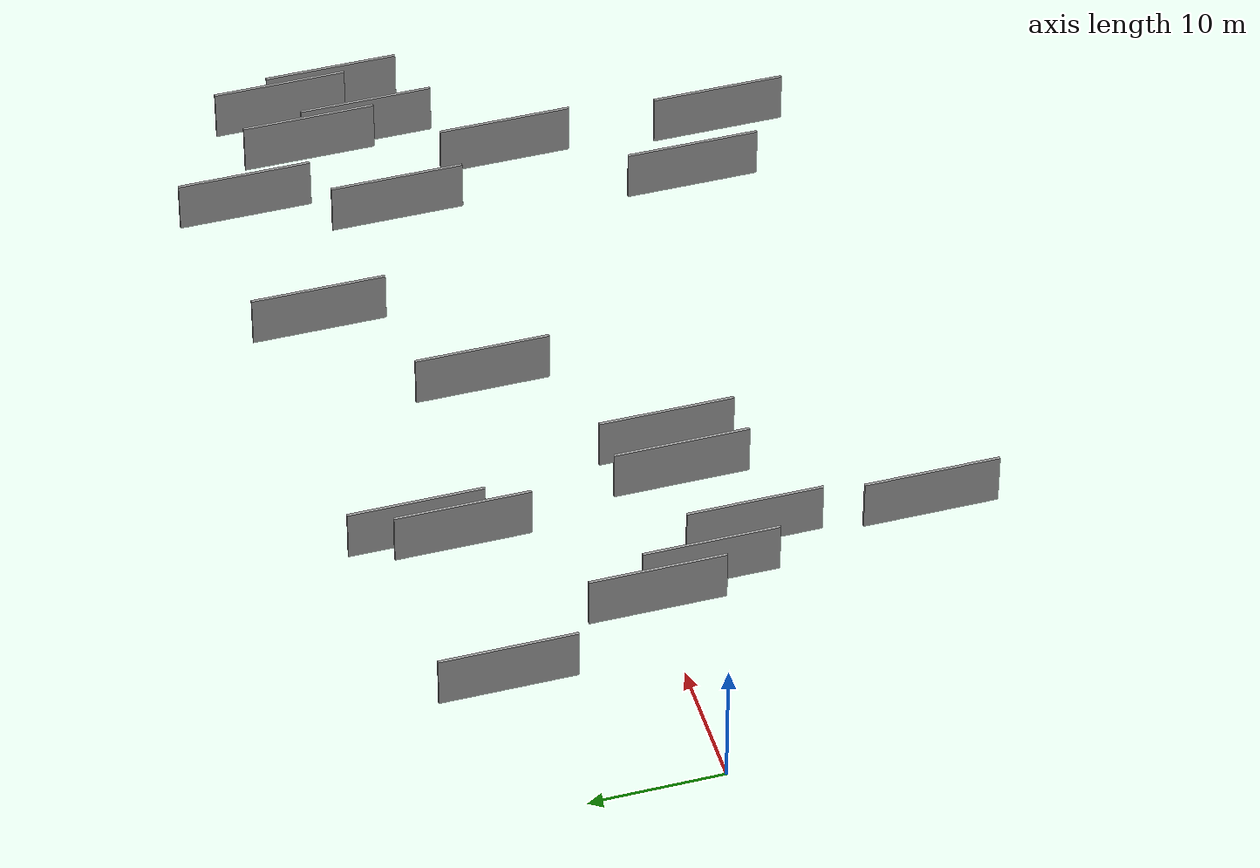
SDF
<sdf version="1.6">
 <world name="default">
  <scene>
   <sky><clouds><speed>12</speed></clouds></sky>
   <ambient>0.4 0.4 0.4 1</ambient>
   <background>0.7 0.7 0.7 1</background>
   <shadows>1</shadows>
  </scene>
  <gravity>0 0 -9.8066</gravity>
  <magnetic_field>6e-06 2.3e-05 -4.2e-05</magnetic_field>
  <physics default="0" name="default_physics" type="ode">
   <ode>
    <solver>
     <type>quick</type>
     <iters>10</iters>
     <sor>1.0</sor>
     <use_dynamic_moi_rescaling>0</use_dynamic_moi_rescaling>
    </solver>
    <constraints>
     <cfm>0</cfm>
     <erp>0.2</erp>
     <contact_max_correcting_vel>100</contact_max_correcting_vel>
     <contact_surface_layer>0.001</contact_surface_layer>
    </constraints>
   </ode>
   <max_step_size>0.004</max_step_size>
   <real_time_factor>1</real_time_factor>
   <real_time_update_rate>250</real_time_update_rate>
  </physics>
  <light name="sun" type="directional">
   <pose>0 0 10 0 0 0</pose>
   <diffuse>0.8 0.8 0.8 1</diffuse>
   <specular>0.2 0.2 0.2 1</specular>
   <attenuation>
    <range>1000</range>
    <constant>0.9</constant>
    <linear>0.01</linear>
    <quadratic>0.001</quadratic>
   </attenuation>
   <direction>-0.5 0.1 -0.9</direction>
  </light>
  <model name="grey_wall_1">
   <static>1</static>
   <pose>15.8258 -19.7976 5.0 0.000000 0.000000 1.570796</pose>
   <link name="link">
    <pose>0 0 2.00 0 0 0</pose>
    <collision name="collision"><geometry><box><size>10.00 0.2 4.00</size></box></geometry></collision>
    <visual name="visual">
     <cast_shadows>0</cast_shadows>
     <geometry><box><size>10.00 0.2 4.00</size></box></geometry>
     <material>
      <script>
       <uri>model://grey_wall/materials/scripts</uri>
       <uri>model://grey_wall/materials/textures</uri>
       <name>vrc/grey_wall</name>
      </script>
     </material>
    </visual>
   </link>
  </model>
  <model name="grey_wall_2">
   <static>1</static>
   <pose>11.9177 1.4684 5.0 0.000000 0.000000 1.570796</pose>
   <link name="link">
    <pose>0 0 2.00 0 0 0</pose>
    <collision name="collision"><geometry><box><size>10.00 0.2 4.00</size></box></geometry></collision>
    <visual name="visual">
     <cast_shadows>0</cast_shadows>
     <geometry><box><size>10.00 0.2 4.00</size></box></geometry>
     <material>
      <script>
       <uri>model://grey_wall/materials/scripts</uri>
       <uri>model://grey_wall/materials/textures</uri>
       <name>vrc/grey_wall</name>
      </script>
     </material>
    </visual>
   </link>
  </model>
  <model name="grey_wall_3">
   <static>1</static>
   <pose>13.5202 -2.8960 5.0 0.000000 0.000000 1.570796</pose>
   <link name="link">
    <pose>0 0 2.00 0 0 0</pose>
    <collision name="collision"><geometry><box><size>10.00 0.2 4.00</size></box></geometry></collision>
    <visual name="visual">
     <cast_shadows>0</cast_shadows>
     <geometry><box><size>10.00 0.2 4.00</size></box></geometry>
     <material>
      <script>
       <uri>model://grey_wall/materials/scripts</uri>
       <uri>model://grey_wall/materials/textures</uri>
       <name>vrc/grey_wall</name>
      </script>
     </material>
    </visual>
   </link>
  </model>
  <model name="grey_wall_4">
   <static>1</static>
   <pose>64.7459 13.0781 5.0 0.000000 0.000000 1.570796</pose>
   <link name="link">
    <pose>0 0 2.00 0 0 0</pose>
    <collision name="collision"><geometry><box><size>10.00 0.2 4.00</size></box></geometry></collision>
    <visual name="visual">
     <cast_shadows>0</cast_shadows>
     <geometry><box><size>10.00 0.2 4.00</size></box></geometry>
     <material>
      <script>
       <uri>model://grey_wall/materials/scripts</uri>
       <uri>model://grey_wall/materials/textures</uri>
       <name>vrc/grey_wall</name>
      </script>
     </material>
    </visual>
   </link>
  </model>
  <model name="grey_wall_5">
   <static>1</static>
   <pose>69.0698 14.2460 5.0 0.000000 0.000000 1.570796</pose>
   <link name="link">
    <pose>0 0 2.00 0 0 0</pose>
    <collision name="collision"><geometry><box><size>10.00 0.2 4.00</size></box></geometry></collision>
    <visual name="visual">
     <cast_shadows>0</cast_shadows>
     <geometry><box><size>10.00 0.2 4.00</size></box></geometry>
     <material>
      <script>
       <uri>model://grey_wall/materials/scripts</uri>
       <uri>model://grey_wall/materials/textures</uri>
       <name>vrc/grey_wall</name>
      </script>
     </material>
    </visual>
   </link>
  </model>
  <model name="grey_wall_6">
   <static>1</static>
   <pose>16.4750 -6.9574 5.0 0.000000 0.000000 1.570796</pose>
   <link name="link">
    <pose>0 0 2.00 0 0 0</pose>
    <collision name="collision"><geometry><box><size>10.00 0.2 4.00</size></box></geometry></collision>
    <visual name="visual">
     <cast_shadows>0</cast_shadows>
     <geometry><box><size>10.00 0.2 4.00</size></box></geometry>
     <material>
      <script>
       <uri>model://grey_wall/materials/scripts</uri>
       <uri>model://grey_wall/materials/textures</uri>
       <name>vrc/grey_wall</name>
      </script>
     </material>
    </visual>
   </link>
  </model>
  <model name="grey_wall_7">
   <static>1</static>
   <pose>59.4809 -17.3056 5.0 0.000000 0.000000 1.570796</pose>
   <link name="link">
    <pose>0 0 2.00 0 0 0</pose>
    <collision name="collision"><geometry><box><size>10.00 0.2 4.00</size></box></geometry></collision>
    <visual name="visual">
     <cast_shadows>0</cast_shadows>
     <geometry><box><size>10.00 0.2 4.00</size></box></geometry>
     <material>
      <script>
       <uri>model://grey_wall/materials/scripts</uri>
       <uri>model://grey_wall/materials/textures</uri>
       <name>vrc/grey_wall</name>
      </script>
     </material>
    </visual>
   </link>
  </model>
  <model name="grey_wall_8">
   <static>1</static>
   <pose>56.4049 8.4495 5.0 0.000000 0.000000 1.570796</pose>
   <link name="link">
    <pose>0 0 2.00 0 0 0</pose>
    <collision name="collision"><geometry><box><size>10.00 0.2 4.00</size></box></geometry></collision>
    <visual name="visual">
     <cast_shadows>0</cast_shadows>
     <geometry><box><size>10.00 0.2 4.00</size></box></geometry>
     <material>
      <script>
       <uri>model://grey_wall/materials/scripts</uri>
       <uri>model://grey_wall/materials/textures</uri>
       <name>vrc/grey_wall</name>
      </script>
     </material>
    </visual>
   </link>
  </model>
  <model name="grey_wall_9">
   <static>1</static>
   <pose>26.9093 -3.6095 5.0 0.000000 0.000000 1.570796</pose>
   <link name="link">
    <pose>0 0 2.00 0 0 0</pose>
    <collision name="collision"><geometry><box><size>10.00 0.2 4.00</size></box></geometry></collision>
    <visual name="visual">
     <cast_shadows>0</cast_shadows>
     <geometry><box><size>10.00 0.2 4.00</size></box></geometry>
     <material>
      <script>
       <uri>model://grey_wall/materials/scripts</uri>
       <uri>model://grey_wall/materials/textures</uri>
       <name>vrc/grey_wall</name>
      </script>
     </material>
    </visual>
   </link>
  </model>
  <model name="grey_wall_10">
   <static>1</static>
   <pose>7.4243 13.4742 5.0 0.000000 0.000000 1.570796</pose>
   <link name="link">
    <pose>0 0 2.00 0 0 0</pose>
    <collision name="collision"><geometry><box><size>10.00 0.2 4.00</size></box></geometry></collision>
    <visual name="visual">
     <cast_shadows>0</cast_shadows>
     <geometry><box><size>10.00 0.2 4.00</size></box></geometry>
     <material>
      <script>
       <uri>model://grey_wall/materials/scripts</uri>
       <uri>model://grey_wall/materials/textures</uri>
       <name>vrc/grey_wall</name>
      </script>
     </material>
    </visual>
   </link>
  </model>
  <model name="grey_wall_11">
   <static>1</static>
   <pose>22.8987 15.8759 5.0 0.000000 0.000000 1.570796</pose>
   <link name="link">
    <pose>0 0 2.00 0 0 0</pose>
    <collision name="collision"><geometry><box><size>10.00 0.2 4.00</size></box></geometry></collision>
    <visual name="visual">
     <cast_shadows>0</cast_shadows>
     <geometry><box><size>10.00 0.2 4.00</size></box></geometry>
     <material>
      <script>
       <uri>model://grey_wall/materials/scripts</uri>
       <uri>model://grey_wall/materials/textures</uri>
       <name>vrc/grey_wall</name>
      </script>
     </material>
    </visual>
   </link>
  </model>
  <model name="grey_wall_12">
   <static>1</static>
   <pose>23.5354 -3.7378 5.0 0.000000 0.000000 1.570796</pose>
   <link name="link">
    <pose>0 0 2.00 0 0 0</pose>
    <collision name="collision"><geometry><box><size>10.00 0.2 4.00</size></box></geometry></collision>
    <visual name="visual">
     <cast_shadows>0</cast_shadows>
     <geometry><box><size>10.00 0.2 4.00</size></box></geometry>
     <material>
      <script>
       <uri>model://grey_wall/materials/scripts</uri>
       <uri>model://grey_wall/materials/textures</uri>
       <name>vrc/grey_wall</name>
      </script>
     </material>
    </visual>
   </link>
  </model>
  <model name="grey_wall_13">
   <static>1</static>
   <pose>60.4025 -0.9328 5.0 0.000000 0.000000 1.570796</pose>
   <link name="link">
    <pose>0 0 2.00 0 0 0</pose>
    <collision name="collision"><geometry><box><size>10.00 0.2 4.00</size></box></geometry></collision>
    <visual name="visual">
     <cast_shadows>0</cast_shadows>
     <geometry><box><size>10.00 0.2 4.00</size></box></geometry>
     <material>
      <script>
       <uri>model://grey_wall/materials/scripts</uri>
       <uri>model://grey_wall/materials/textures</uri>
       <name>vrc/grey_wall</name>
      </script>
     </material>
    </visual>
   </link>
  </model>
  <model name="grey_wall_14">
   <static>1</static>
   <pose>36.7609 7.2722 5.0 0.000000 0.000000 1.570796</pose>
   <link name="link">
    <pose>0 0 2.00 0 0 0</pose>
    <collision name="collision"><geometry><box><size>10.00 0.2 4.00</size></box></geometry></collision>
    <visual name="visual">
     <cast_shadows>0</cast_shadows>
     <geometry><box><size>10.00 0.2 4.00</size></box></geometry>
     <material>
      <script>
       <uri>model://grey_wall/materials/scripts</uri>
       <uri>model://grey_wall/materials/textures</uri>
       <name>vrc/grey_wall</name>
      </script>
     </material>
    </visual>
   </link>
  </model>
  <model name="grey_wall_15">
   <static>1</static>
   <pose>21.6800 12.8251 5.0 0.000000 0.000000 1.570796</pose>
   <link name="link">
    <pose>0 0 2.00 0 0 0</pose>
    <collision name="collision"><geometry><box><size>10.00 0.2 4.00</size></box></geometry></collision>
    <visual name="visual">
     <cast_shadows>0</cast_shadows>
     <geometry><box><size>10.00 0.2 4.00</size></box></geometry>
     <material>
      <script>
       <uri>model://grey_wall/materials/scripts</uri>
       <uri>model://grey_wall/materials/textures</uri>
       <name>vrc/grey_wall</name>
      </script>
     </material>
    </visual>
   </link>
  </model>
  <model name="grey_wall_16">
   <static>1</static>
   <pose>69.8592 10.0712 5.0 0.000000 0.000000 1.570796</pose>
   <link name="link">
    <pose>0 0 2.00 0 0 0</pose>
    <collision name="collision"><geometry><box><size>10.00 0.2 4.00</size></box></geometry></collision>
    <visual name="visual">
     <cast_shadows>0</cast_shadows>
     <geometry><box><size>10.00 0.2 4.00</size></box></geometry>
     <material>
      <script>
       <uri>model://grey_wall/materials/scripts</uri>
       <uri>model://grey_wall/materials/textures</uri>
       <name>vrc/grey_wall</name>
      </script>
     </material>
    </visual>
   </link>
  </model>
  <model name="grey_wall_17">
   <static>1</static>
   <pose>65.4870 8.4819 5.0 0.000000 0.000000 1.570796</pose>
   <link name="link">
    <pose>0 0 2.00 0 0 0</pose>
    <collision name="collision"><geometry><box><size>10.00 0.2 4.00</size></box></geometry></collision>
    <visual name="visual">
     <cast_shadows>0</cast_shadows>
     <geometry><box><size>10.00 0.2 4.00</size></box></geometry>
     <material>
      <script>
       <uri>model://grey_wall/materials/scripts</uri>
       <uri>model://grey_wall/materials/textures</uri>
       <name>vrc/grey_wall</name>
      </script>
     </material>
    </visual>
   </link>
  </model>
  <model name="grey_wall_18">
   <static>1</static>
   <pose>46.1425 17.0389 5.0 0.000000 0.000000 1.570796</pose>
   <link name="link">
    <pose>0 0 2.00 0 0 0</pose>
    <collision name="collision"><geometry><box><size>10.00 0.2 4.00</size></box></geometry></collision>
    <visual name="visual">
     <cast_shadows>0</cast_shadows>
     <geometry><box><size>10.00 0.2 4.00</size></box></geometry>
     <material>
      <script>
       <uri>model://grey_wall/materials/scripts</uri>
       <uri>model://grey_wall/materials/textures</uri>
       <name>vrc/grey_wall</name>
      </script>
     </material>
    </visual>
   </link>
  </model>
  <model name="grey_wall_19">
   <static>1</static>
   <pose>53.9657 -13.6798 5.0 0.000000 0.000000 1.570796</pose>
   <link name="link">
    <pose>0 0 2.00 0 0 0</pose>
    <collision name="collision"><geometry><box><size>10.00 0.2 4.00</size></box></geometry></collision>
    <visual name="visual">
     <cast_shadows>0</cast_shadows>
     <geometry><box><size>10.00 0.2 4.00</size></box></geometry>
     <material>
      <script>
       <uri>model://grey_wall/materials/scripts</uri>
       <uri>model://grey_wall/materials/textures</uri>
       <name>vrc/grey_wall</name>
      </script>
     </material>
    </visual>
   </link>
  </model>
  <model name="grey_wall_20">
   <static>1</static>
   <pose>59.7509 19.2541 5.0 0.000000 0.000000 1.570796</pose>
   <link name="link">
    <pose>0 0 2.00 0 0 0</pose>
    <collision name="collision"><geometry><box><size>10.00 0.2 4.00</size></box></geometry></collision>
    <visual name="visual">
     <cast_shadows>0</cast_shadows>
     <geometry><box><size>10.00 0.2 4.00</size></box></geometry>
     <material>
      <script>
       <uri>model://grey_wall/materials/scripts</uri>
       <uri>model://grey_wall/materials/textures</uri>
       <name>vrc/grey_wall</name>
      </script>
     </material>
    </visual>
   </link>
  </model>
 </world>
</sdf>
